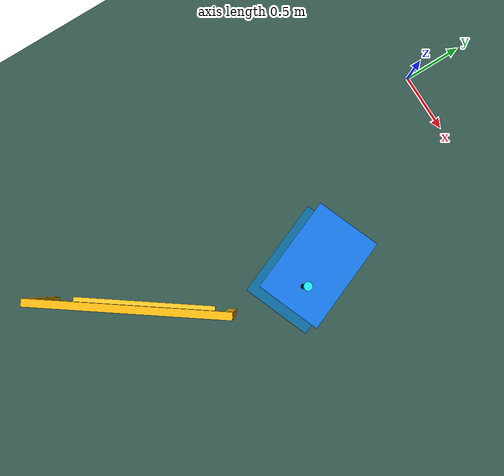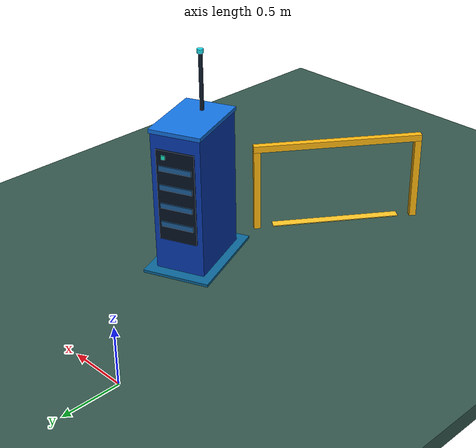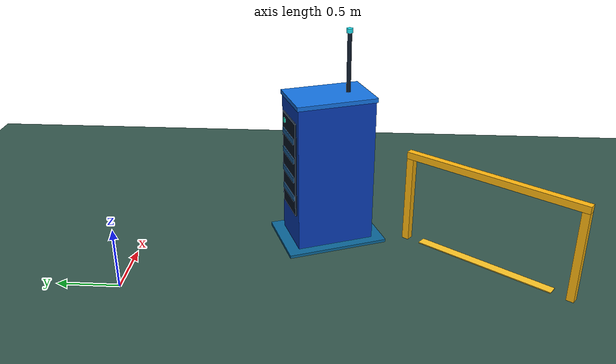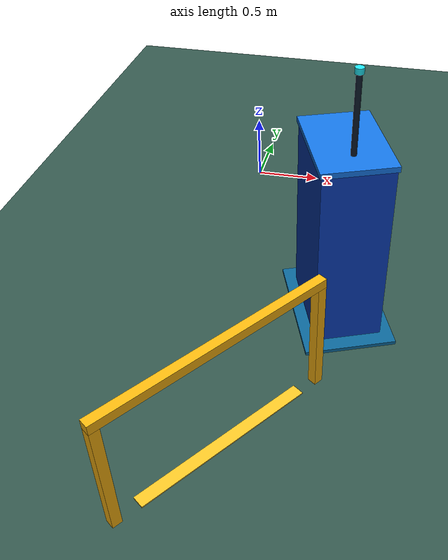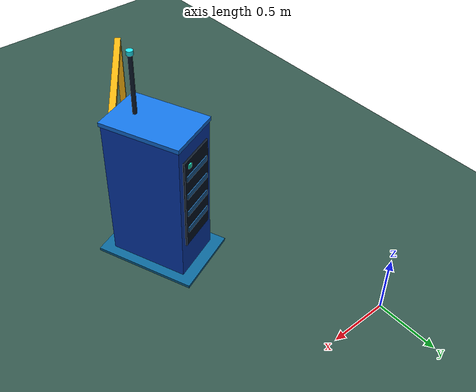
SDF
<sdf version="1.9">
 <world name="monaco">
  <model name="ground">
   <static>true</static>
   <link name="body">
    <visual name="ground">
     <pose>0 0 -0.08 0 0 0</pose>
     <geometry><box><size>100 100 0.15</size></box></geometry>
     <material><ambient>0.20 0.34 0.30 1</ambient><diffuse>0.20 0.34 0.30 1</diffuse></material>
    </visual>
    <collision name="ground_collision">
     <pose>0 0 -0.08 0 0 0</pose>
     <geometry><box><size>100 100 0.15</size></box></geometry>
    </collision>
   </link>
  </model>
  <model name="checkpoint_10">
   <static>true</static>
   <pose>0.4660888843649992 -2.883418868818606 0 0 0 2.5207701017671225</pose>
   <link name="body">
    <visual name="stripe">
     <pose>0 0 0.016 0 0 0</pose>
     <geometry><box><size>0.08 1.17 0.008</size></box></geometry>
     <material><ambient>1 0.78 0.15 1</ambient><diffuse>1 0.78 0.15 1</diffuse></material>
    </visual>
    <visual name="post_-1">
     <pose>0 -0.73 0.38 0 0 0</pose>
     <geometry><box><size>0.06 0.06 0.76</size></box></geometry>
     <material><ambient>1 0.72 0.06 1</ambient><diffuse>1 0.72 0.06 1</diffuse></material>
    </visual>
    <visual name="post_1">
     <pose>0 0.73 0.38 0 0 0</pose>
     <geometry><box><size>0.06 0.06 0.76</size></box></geometry>
     <material><ambient>1 0.72 0.06 1</ambient><diffuse>1 0.72 0.06 1</diffuse></material>
    </visual>
    <visual name="overhead">
     <pose>0 0 0.79 0 0 0</pose>
     <geometry><box><size>0.06 1.52 0.06</size></box></geometry>
     <material><ambient>1 0.72 0.06 1</ambient><diffuse>1 0.72 0.06 1</diffuse></material>
    </visual>
   </link>
  </model>
  <model name="edge_11">
   <static>true</static>
   <pose>0.9146802337776508 -1.5873487548263558 0 0 0 1.9525162955444766</pose>
   <link name="body">
    <collision name="chassis_collision">
     <pose>0 0 0.14 0 0 0</pose>
     <geometry><box><size>0.64 0.32 0.13</size></box></geometry>
    </collision>
    <visual name="parking_bay">
     <pose>0 0 0.012 0 0 0</pose>
     <geometry><box><size>0.86 0.60 0.025</size></box></geometry>
     <material><ambient>0.04 0.40 0.60 1</ambient><diffuse>0.04 0.40 0.60 1</diffuse></material>
    </visual>
    <visual name="server_cabinet">
     <pose>0 0 0.65 0 0 0</pose>
     <geometry><box><size>0.66 0.44 1.25</size></box></geometry>
     <material><ambient>0.035 0.24 0.72 1</ambient><diffuse>0.035 0.24 0.72 1</diffuse></material>
    </visual>
    <visual name="cabinet_top">
     <pose>0 0 1.285 0 0 0</pose>
     <geometry><box><size>0.68 0.46 0.035</size></box></geometry>
     <material><ambient>0.08 0.46 0.90 1</ambient><diffuse>0.08 0.46 0.90 1</diffuse></material>
    </visual>
    <visual name="front_panel">
     <pose>0.337 0 0.73 0 0 0</pose>
     <geometry><box><size>0.014 0.34 0.82</size></box></geometry>
     <material><ambient>0.025 0.075 0.14 1</ambient><diffuse>0.025 0.075 0.14 1</diffuse></material>
    </visual>
    <visual name="rack_slot_0">
     <pose>0.347 0 0.47 0 0 0</pose>
     <geometry><box><size>0.012 0.29 0.045</size></box></geometry>
     <material><ambient>0.11 0.38 0.62 1</ambient><diffuse>0.11 0.38 0.62 1</diffuse></material>
    </visual>
    <visual name="rack_slot_1">
     <pose>0.347 0 0.64 0 0 0</pose>
     <geometry><box><size>0.012 0.29 0.045</size></box></geometry>
     <material><ambient>0.11 0.38 0.62 1</ambient><diffuse>0.11 0.38 0.62 1</diffuse></material>
    </visual>
    <visual name="rack_slot_2">
     <pose>0.347 0 0.81 0 0 0</pose>
     <geometry><box><size>0.012 0.29 0.045</size></box></geometry>
     <material><ambient>0.11 0.38 0.62 1</ambient><diffuse>0.11 0.38 0.62 1</diffuse></material>
    </visual>
    <visual name="rack_slot_3">
     <pose>0.347 0 0.98 0 0 0</pose>
     <geometry><box><size>0.012 0.29 0.045</size></box></geometry>
     <material><ambient>0.11 0.38 0.62 1</ambient><diffuse>0.11 0.38 0.62 1</diffuse></material>
    </visual>
    <visual name="status_light">
     <pose>0.347 -0.10 1.08 0 0 0</pose>
     <geometry><box><size>0.015 0.035 0.035</size></box></geometry>
     <material><ambient>0.10 0.95 0.80 1</ambient><diffuse>0.10 0.95 0.80 1</diffuse></material>
    </visual>
    <visual name="antenna">
     <pose>-0.17 0 1.55 0 0 0</pose>
     <geometry><cylinder><radius>0.018</radius><length>0.5</length></cylinder></geometry>
     <material><ambient>0.05 0.10 0.17 1</ambient><diffuse>0.05 0.10 0.17 1</diffuse></material>
    </visual>
    <visual name="antenna_tip">
     <pose>-0.17 0 1.81 0 0 0</pose>
     <geometry><cylinder><radius>0.027</radius><length>0.035</length></cylinder></geometry>
     <material><ambient>0.12 0.90 0.96 1</ambient><diffuse>0.12 0.90 0.96 1</diffuse></material>
    </visual>
   </link>
  </model>
 </world>
</sdf>
